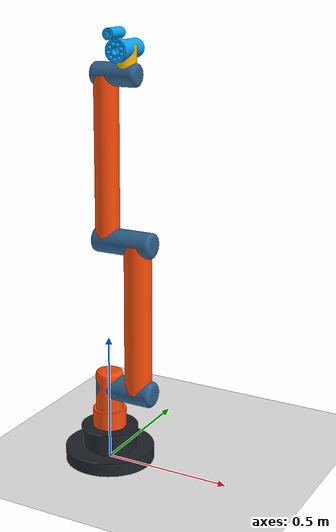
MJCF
<mujoco model="my_robotic_arm">

    <compiler angle="radian"
              meshdir="../../robotic_arm_ws/src/robotic_arm_description/meshes"/>

    <option timestep="0.002"
            gravity="0 0 -9.81"/>

    <!-- VISUAL SETTINGS                                           -->

    <visual>

        <headlight diffuse="0.85 0.85 0.85"
                    ambient="0.45 0.45 0.45"
                    specular="0.25 0.25 0.25"/>

        <map znear="0.01"
             zfar="30"
             stiffness="0.6"
             stiffnessrot="0.3"
             force="0.1"
             torque="0.1"/>

        <quality shadowsize="2048"/>

    </visual>

    <!-- ASSETS                                                     -->

    <asset>

        <!-- Light background -->
        <texture name="light_sky"
                 type="skybox"
                 builtin="gradient"
                 rgb1="0.98 0.98 0.98"
                 rgb2="0.82 0.86 0.90"
                 width="512"
                 height="512"/>

        <!-- Robot materials -->

        <material name="mat_dark_gray"
                  rgba="0.12 0.14 0.16 1"
                  specular="0.5"
                  shininess="0.5"/>

        <material name="mat_orange"
                  rgba="1.0 0.30 0.03 1"
                  specular="0.45"
                  shininess="0.5"/>

        <material name="mat_orange_dark"
                  rgba="0.70 0.16 0.02 1"
                  specular="0.45"
                  shininess="0.5"/>

        <material name="mat_blue_gray"
                  rgba="0.18 0.38 0.55 1"
                  specular="0.55"
                  shininess="0.6"/>

        <material name="mat_yellow"
                  rgba="1.0 0.75 0.02 1"
                  specular="0.5"
                  shininess="0.5"/>

        <material name="mat_metal"
                  rgba="0.35 0.38 0.42 1"
                  specular="0.8"
                  shininess="0.8"/>

        <!-- TOOL MATERIAL                                          -->

        <material name="mat_tool"
                  rgba="0.02 0.65 1.0 1"
                  specular="0.8"
                  shininess="0.9"/>

        <!-- TCP -->
        <material name="mat_red"
                  rgba="1.0 0.02 0.02 1"
                  specular="0.6"
                  shininess="0.6"/>

        <!-- MESHES                                                 -->

        <mesh name="base_mesh"
              file="base.stl"
              scale="10 10 10"/>

        <mesh name="link1_mesh"
              file="link1.stl"
              scale="10 10 10"/>

        <mesh name="link2_mesh"
              file="link2.stl"
              scale="10 10 10"/>

        <mesh name="link3_mesh"
              file="link3.stl"
              scale="10 10 10"/>

        <mesh name="link4_mesh"
              file="link4.stl"
              scale="10 10 10"/>

        <mesh name="link5_mesh"
              file="link5.stl"
              scale="10 10 10"/>

        <mesh name="link6_mesh"
              file="link6.stl"
              scale="10 10 10"/>

        <mesh name="joint5_part_mesh"
              file="joint5_part.stl"
              scale="10 10 10"/>

        <mesh name="tool_mesh"
              file="tool.stl"
              scale="10 10 10"/>

    </asset>

    <!-- WORLD                                                      -->

    <worldbody>

        <!-- GROUND                                                 -->

        <geom name="ground"
              type="plane"
              size="3 3 0.1"
              pos="0 0 0"
              rgba="0.94 0.94 0.94 1"
              friction="1 0.5 0.1"/>

        <!-- BASE                                                    -->

        <body name="base_link"
              pos="0 0 0">

            <inertial
                pos="0 0 0.05291644"
                mass="5.0"
                diaginertia="0.0582 0.0585 0.1006"/>

            <geom name="base"
                  type="mesh"
                  mesh="base_mesh"
                  pos="0 0 0"
                  material="mat_dark_gray"/>

            <!-- LINK 1                                              -->

            <body name="link_1"
                  pos="0 0 0.13843">

                <joint name="joint_1"
                       type="hinge"
                       axis="0 0 1"
                       range="-3.14159 3.14159"
                       damping="1.5"
                       frictionloss="0.2"/>

                <inertial
                    pos="0 0 0.093244125"
                    mass="3.5"
                    diaginertia="0.0235 0.0235 0.00984"/>

                <geom name="link1"
                      type="mesh"
                      mesh="link1_mesh"
                      pos="0 0 -0.13843"
                      material="mat_orange"/>

                <!-- LINK 2                                            -->

                <body name="link_2"
                      pos="0.12851259 0 0.16637">

                    <joint name="joint_2"
                           type="hinge"
                           axis="1 0 0"
                           range="-2.6 2.6"
                           damping="0.5"
                           frictionloss="0.05"/>

                    <inertial
                        pos="-0.053474247 0 -0.003215252"
                        mass="4.0"
                        fullinertia="
                            0.305181023827
                            0.361752536299
                            0.067654324643
                            0.000000738802
                            -0.082019239604
                            0.000002810836"/>

                    <geom name="link2"
                          type="mesh"
                          mesh="link2_mesh"
                          pos="-0.12851259 0 -0.3048"
                          material="mat_blue_gray"/>

                    <body name="link2_to_link3"
                          pos="0 0 0">

                        <!-- LINK 3                                -->

                        <body name="link_3"
                              pos="0 0 0.5842">

                            <inertial
                                pos="0.000161292 0 0.292437523"
                                mass="1.5"
                                diaginertia="0.0443 0.0442 0.00275"/>

                            <geom name="link3"
                                  type="mesh"
                                  mesh="link3_mesh"
                                  pos="-0.12851259 0 -0.89"
                                  material="mat_orange"/>

                            <!-- JOINT 3 ASSEMBLY                  -->

                            <body name="j3_assembly"
                                  pos="0 0 0">

                                <joint name="joint_3"
                                       type="hinge"
                                       axis="1 0 0"
                                       range="-2.8 2.8"
                                       damping="0.5"
                                       frictionloss="0.05"/>

                                <inertial
                                    pos="0 0 0"
                                    mass="2.5"
                                    diaginertia="0.03 0.03 0.03"/>

                                <body name="j3_shaft_fixed"
                                      pos="0 0 0">

                                    <!-- LINK 4                    -->

                                    <body name="link_4"
                                          pos="0 0 0">

                                        <inertial
                                            pos="-0.055867814 0 0.000728446"
                                            mass="3.0"
                                            fullinertia="
                                                0.00463
                                                0.0155
                                                0.0162
                                                0
                                                0
                                                0"/>

                                        <geom name="link4"
                                              type="mesh"
                                              mesh="link4_mesh"
                                              pos="-0.12851259 0 -0.889"
                                              material="mat_blue_gray"/>

                                    </body>

                                </body>

                                <!-- LINK 5                            -->

                                <body name="j3_to_link5"
                                      pos="0 0 0">

                                    <body name="link_5"
                                          pos="0 0 0">

                                        <inertial
                                            pos="-0.12851259 0 0.310738772"
                                            mass="1.5"
                                            diaginertia="0.0456 0.0456 0.00212"/>

                                        <geom name="link5"
                                              type="mesh"
                                              mesh="link5_mesh"
                                              pos="-0.12851259 0 -0.889"
                                              material="mat_orange"/>

                                        <!-- JOINT 4                    -->

                                        <body name="j4_assembly"
                                              pos="-0.1293 0 0.61374">

                                            <joint name="joint_4"
                                                   type="hinge"
                                                   axis="1 0 0"
                                                   range="-3.14159 3.14159"
                                                   damping="0.5"
                                                   frictionloss="0.05"/>

                                            <inertial
                                                pos="0 0 0"
                                                mass="1.0"
                                                diaginertia="0.01 0.01 0.01"/>

                                            <body name="j4_shaft_fixed"
                                                  pos="0 0 0">

                                                <!-- LINK 6            -->

                                                <body name="link_6"
                                                      pos="0 0 0">

                                                    <inertial
                                                        pos="0.041082373 0 0.000000744"
                                                        mass="1.0"
                                                        fullinertia="
                                                            0.00121
                                                            0.00342
                                                            0.00342
                                                            0
                                                            0
                                                            0"/>

                                                    <geom name="link6"
                                                          type="mesh"
                                                          mesh="link6_mesh"
                                                          pos="0.00078741 0 -1.50274"
                                                          material="mat_blue_gray"/>

                                                </body>

                                            </body>

                                            <!-- JOINT 5               -->

                                            <body name="j5_assembly"
                                                  pos="0.08734741 0 0.04266">

                                                <joint name="joint_5"
                                                       type="hinge"
                                                       axis="0 0 1"
                                                       range="-3.14159 3.14159"
                                                       damping="0.3"
                                                       frictionloss="0.03"/>

                                                <inertial
                                                    pos="0 0 0"
                                                    mass="0.5"
                                                    diaginertia="0.005 0.005 0.005"/>

                                                <body name="joint5_part_fixed"
                                                      pos="0 0 0">

                                                    <body name="joint5_part"
                                                          pos="0 0 0">

                                                        <inertial
                                                            pos="0.000018123 -0.00000564 0.015934129"
                                                            mass="0.5"
                                                            fullinertia="
                                                                0.00052
                                                                0.00052
                                                                0.000435
                                                                0
                                                                0
                                                                0"/>

                                                        <geom name="joint5_part"
                                                              type="mesh"
                                                              mesh="joint5_part_mesh"
                                                              pos="-0.08656 0 -1.5454"
                                                              material="mat_yellow"/>

                                                        <!-- TOOL / JOINT 6    -->

                                                        <body name="tool0"
                                                              pos="-0.00002907569 -0.02705100 0.06650153">

                                                            <joint name="joint_6"
                                                                   type="hinge"
                                                                   axis="0 1 0"
                                                                   range="-3.14159 3.14159"
                                                                   damping="0.2"
                                                                   frictionloss="0.02"/>

                                                            <inertial
                                                                pos="-0.000155731 -0.03997625 -0.009860992"
                                                                mass="0.6"
                                                                fullinertia="
                                                                    0.00281
                                                                    0.00108
                                                                    0.00241
                                                                    0
                                                                    0
                                                                    0"/>

                                                            <!-- TOOL COLOR        -->

                                                            <geom name="tool"
                                                                  type="mesh"
                                                                  mesh="tool_mesh"
                                                                  pos="-0.086530924309 0.05092700 -1.62946440"
                                                                  material="mat_tool"/>

                                                            <!-- TCP                -->

                                                            <site name="tcp"
                                                                  pos="-0.086530924309 0.05092700 -1.62946440"
                                                                  size="0.008"
                                                                  rgba="1 0 0 1"/>

                                                        </body>

                                                    </body>

                                                </body>

                                            </body>

                                        </body>

                                    </body>

                                </body>

                            </body>

                        </body>

                    </body>

                </body>

            </body>

        </body>

        <!-- LIGHTING                                                   -->

        <light name="main_light"
               pos="2 2 4"
               dir="-2 -2 -4"
               diffuse="0.9 0.9 0.9"
               specular="0.5 0.5 0.5"
               directional="true"/>

        <light name="fill_light"
               pos="-2 -1 3"
               dir="2 1 -3"
               diffuse="0.6 0.6 0.6"
               specular="0.3 0.3 0.3"/>

        <light name="front_light"
               pos="0 -3 2"
               dir="0 3 -2"
               diffuse="0.45 0.45 0.45"
               specular="0.2 0.2 0.2"/>

    </worldbody>

</mujoco>
